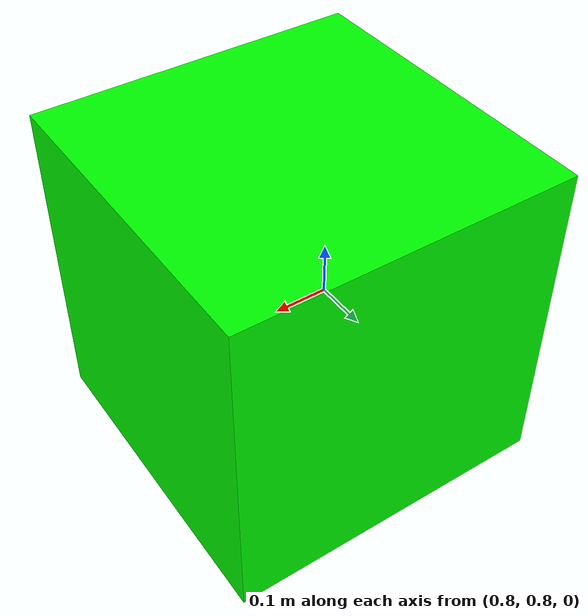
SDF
<sdf version='1.9'>
  <model name='box'>
    <link name='greenbox2'>
      <inertial>
        <pose>2 2 0.5 0 0 0</pose>
        <mass>1</mass>
        <inertia>
          <ixx>0</ixx>
          <ixy>0</ixy>
          <ixz>0</ixz>
          <iyy>0</iyy>
          <iyz>0</iyz>
          <izz>0</izz>
        </inertia>
      </inertial>
      <collision name='greenbox2_fixed_joint_lump__greenbox_link2_collision'>
        <pose>1 1 0.25 0 0 0</pose>
        <geometry>
          <box>
            <size>0.5 0.5 0.5</size>
          </box>
        </geometry>
      </collision>
      <visual name='greenbox2_fixed_joint_lump__greenbox_link2_visual'>
        <pose>1 1 0.25 0 0 0</pose>
        <geometry>
          <box>
            <size>0.5 0.5 0.5</size>
          </box>
        </geometry>
        <material>
          <diffuse>0 1 0 1</diffuse>
          <ambient>0 1 0 1</ambient>
        </material>
      </visual>
    </link>
    <frame name='greenbox_joint2' attached_to='greenbox2'>
      <pose>1 1 0.25 0 -0 0</pose>
    </frame>
    <frame name='greenbox_link2' attached_to='greenbox_joint2'/>
  </model>
</sdf>
